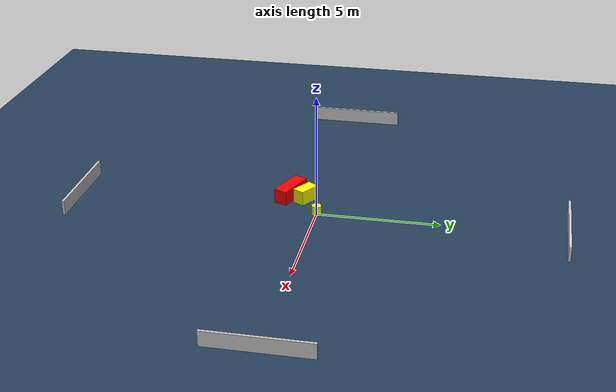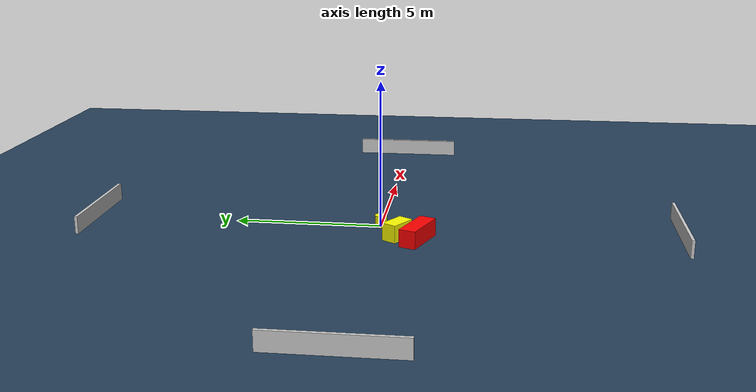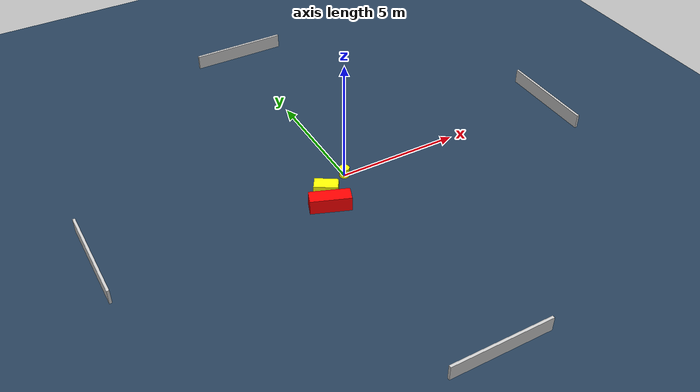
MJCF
<?xml version="1.0" ?>
<mujoco model="generated_environment">
  <option timestep="0.01" integrator="RK4" cone="elliptic"/>
  <default>
    <geom density="1"/>
  </default>
  <asset>
    <texture builtin="gradient" height="3072" name="skybox" rgb1="0.3 0.5 0.7" rgb2="0 0 0" type="skybox" width="512"/>
    <texture builtin="checker" height="300" name="groundplane" rgb1="0.2 0.3 0.4" rgb2="0.1 0.2 0.3" type="2d" width="300"/>
    <material name="groundplane" reflectance="0.2" texrepeat="5 5" texture="groundplane"/>
  </asset>
  <worldbody>
    <light dir="0 0 -1" directional="true" pos="0 0 1.5"/>
    <geom condim="3" friction="0.5 0.005 0.001" material="groundplane" name="floor" pos="0 0 0" size="0 0 0.05" type="plane"/>
    <body name="walls">
      <geom name="wall_1" condim="4" pos="-10.0 0.0 0.3" rgba="0.800000011920929 0.800000011920929 0.800000011920929 1.0" size="0.05 2.0 0.3" type="box"/>
      <geom name="wall_2" condim="4" pos="10.0 0.0 0.3" rgba="0.800000011920929 0.800000011920929 0.800000011920929 1.0" size="0.05 2.0 0.3" type="box"/>
      <geom name="wall_3" condim="4" pos="0.0 -10.0 0.3" rgba="0.800000011920929 0.800000011920929 0.800000011920929 1.0" size="2.0 0.05 0.3" type="box"/>
      <geom name="wall_4" condim="4" pos="0.0 10.0 0.3" rgba="0.800000011920929 0.800000011920929 0.800000011920929 1.0" size="2.0 0.05 0.3" type="box"/>
    </body>
    <body name="robot">
      <joint name="joint_x" type="slide" pos="0 0 0" axis="1 0 0"/>
      <joint name="joint_y" type="slide" pos="0 0 0" axis="0 1 0"/>
      <geom name="robot" type="cylinder" pos="0.0 0.0 0.2" size="0.2 0.2 0.0" mass="5.0" friction="1.0 0.005 0.0001" condim="4" rgba="1.0 1.0 0.0 1.0"/>
    </body>
    <body name="obstacle_1_movable">
      <geom name="obstacle_1_movable" condim="4" pos="-1.1686546691595683 -0.6788787577462342 0.3" euler="0 0 327.6129816223811" friction="0.0 0.005 0.001" rgba="1.0 1.0 0.0 1.0" size="0.46454447866790843 0.259669295009428 0.3" type="box" mass="0.1"/>
      <joint type="free"/>
    </body>
    <body name="obstacle_2_static">
      <geom name="obstacle_2_static" condim="4" pos="-1.3710199321667496 -1.3616616850345014 0.3" euler="0 0 69.26435474603663" friction="0.0 0.005 0.001" rgba="1.0 0.0 0.0 1.0" size="0.28747819567804833 0.7927667832879646 0.3" type="box"/>
    </body>
  </worldbody>
  <actuator>
    <motor name="actuator_x" joint="joint_x" gear="1" ctrlrange="-1 1"/>
    <motor name="actuator_y" joint="joint_y" gear="1" ctrlrange="-1 1"/>
  </actuator>
</mujoco>
